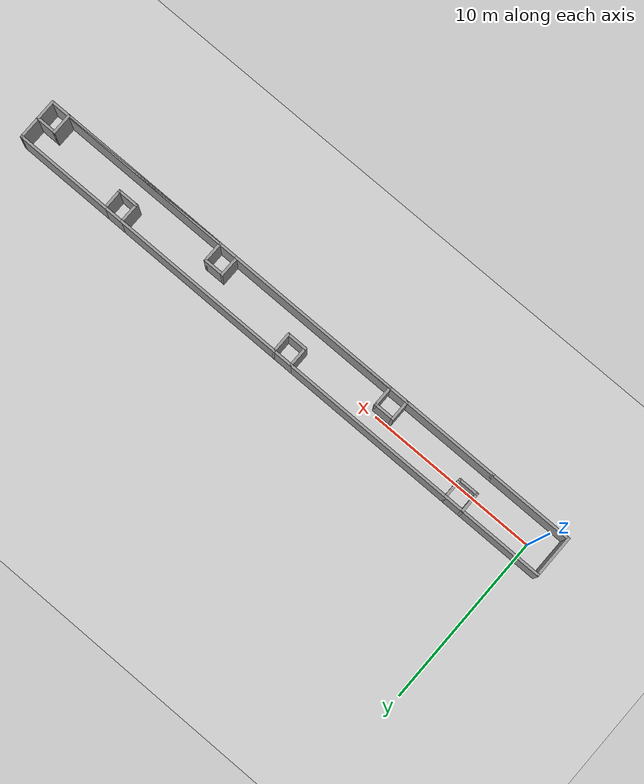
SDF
<sdf version="1.6">
 <world name="default">
  <light name="sun" type="directional">
   <pose>0 0 10 0 -0 0</pose>
   <diffuse>0.8 0.8 0.8 1</diffuse>
   <specular>0.1 0.1 0.1 1</specular>
   <attenuation>
    <range>1000</range>
    <constant>0.9</constant>
    <linear>0.01</linear>
    <quadratic>0.001</quadratic>
   </attenuation>
   <direction>-0.5 0.5 -1</direction>
  </light>
  <model name="ground_plane">
   <static>1</static>
   <link name="link">
    <collision name="collision">
     <geometry><plane><normal>0 0 1</normal><size>100 100</size></plane></geometry>
     <surface><friction><ode><mu>100</mu><mu2>50</mu2></ode></friction></surface>
    </collision>
    <visual name="visual">
     <cast_shadows>0</cast_shadows>
     <geometry><plane><normal>0 0 1</normal><size>100 100</size></plane></geometry>
     <material>
      <script><uri>file://media/materials/scripts/gazebo.material</uri><name>Gazebo/Grey</name></script>
     </material>
    </visual>
   </link>
  </model>
  <gravity>0 0 -9.8</gravity>
  <magnetic_field>6e-06 2.3e-05 -4.2e-05</magnetic_field>
  <atmosphere type="adiabatic"/>
  <physics name="default_physics" default="0" type="ode">
   <max_step_size>0.001</max_step_size>
   <real_time_factor>1</real_time_factor>
   <real_time_update_rate>1000</real_time_update_rate>
  </physics>
  <scene><ambient>0.4 0.4 0.4 1</ambient><background>0.7 0.7 0.7 1</background><shadows>1</shadows></scene>
  <spherical_coordinates>
   <surface_model>EARTH_WGS84</surface_model>
   <latitude_deg>0</latitude_deg>
   <longitude_deg>0</longitude_deg>
   <elevation>0</elevation>
   <heading_deg>0</heading_deg>
  </spherical_coordinates>
  <model name="large_s_world">
   <pose>15.7162 -0.141299 0 0 -0 0</pose>
   <link name="Wall_24">
    <collision name="Wall_24_Collision">
     <geometry><box><size>2.5 0.15 2.5</size></box></geometry>
     <pose>0 0 1.25 0 -0 0</pose>
    </collision>
    <visual name="Wall_24_Visual">
     <pose>0 0 1.25 0 -0 0</pose>
     <geometry><box><size>2.5 0.15 2.5</size></box></geometry>
     <material>
      <script><uri>file://media/materials/scripts/gazebo.material</uri><name>Gazebo/Grey</name></script>
      <ambient>1 1 1 1</ambient>
     </material>
    </visual>
    <pose>-16.975 0 0 0 0 -1.5708</pose>
   </link>
   <link name="Wall_25">
    <collision name="Wall_25_Collision">
     <geometry><box><size>5 0.15 2.5</size></box></geometry>
     <pose>0 0 1.25 0 -0 0</pose>
    </collision>
    <visual name="Wall_25_Visual">
     <pose>0 0 1.25 0 -0 0</pose>
     <geometry><box><size>5 0.15 2.5</size></box></geometry>
     <material>
      <script><uri>file://media/materials/scripts/gazebo.material</uri><name>Gazebo/Grey</name></script>
      <ambient>1 1 1 1</ambient>
     </material>
    </visual>
    <pose>-14.55 -1.175 0 0 -0 0</pose>
   </link>
   <link name="Wall_27">
    <collision name="Wall_27_Collision">
     <geometry><box><size>5 0.15 2.5</size></box></geometry>
     <pose>0 0 1.25 0 -0 0</pose>
    </collision>
    <visual name="Wall_27_Visual">
     <pose>0 0 1.25 0 -0 0</pose>
     <geometry><box><size>5 0.15 2.5</size></box></geometry>
     <material>
      <script><uri>file://media/materials/scripts/gazebo.material</uri><name>Gazebo/Grey</name></script>
      <ambient>1 1 1 1</ambient>
     </material>
    </visual>
    <pose>-14.55 1.175 0 0 -0 3.14159</pose>
   </link>
   <link name="Wall_29">
    <collision name="Wall_29_Collision">
     <geometry><box><size>1.25 0.15 2.5</size></box></geometry>
     <pose>0 0 1.25 0 -0 0</pose>
    </collision>
    <visual name="Wall_29_Visual">
     <pose>0 0 1.25 0 -0 0</pose>
     <geometry><box><size>1.25 0.15 2.5</size></box></geometry>
     <material>
      <script><uri>file://media/materials/scripts/gazebo.material</uri><name>Gazebo/Grey</name></script>
      <ambient>1 1 1 1</ambient>
     </material>
    </visual>
    <pose>-11.575 1.175 0 0 -0 0</pose>
   </link>
   <link name="Wall_30">
    <collision name="Wall_30_Collision">
     <geometry><box><size>1.25 0.15 2.5</size></box></geometry>
     <pose>0 0 1.25 0 -0 0</pose>
    </collision>
    <visual name="Wall_30_Visual">
     <pose>0 0 1.25 0 -0 0</pose>
     <geometry><box><size>1.25 0.15 2.5</size></box></geometry>
     <material>
      <script><uri>file://media/materials/scripts/gazebo.material</uri><name>Gazebo/Grey</name></script>
      <ambient>1 1 1 1</ambient>
     </material>
    </visual>
    <pose>-11.025 0.625 0 0 0 -1.5708</pose>
   </link>
   <link name="Wall_31">
    <collision name="Wall_31_Collision">
     <geometry><box><size>1.25 0.15 2.5</size></box></geometry>
     <pose>0 0 1.25 0 -0 0</pose>
    </collision>
    <visual name="Wall_31_Visual">
     <pose>0 0 1.25 0 -0 0</pose>
     <geometry><box><size>1.25 0.15 2.5</size></box></geometry>
     <material>
      <script><uri>file://media/materials/scripts/gazebo.material</uri><name>Gazebo/Grey</name></script>
      <ambient>1 1 1 1</ambient>
     </material>
    </visual>
    <pose>-11.575 0.075 0 0 -0 3.14159</pose>
   </link>
   <link name="Wall_32">
    <collision name="Wall_32_Collision">
     <geometry><box><size>1.25 0.15 2.5</size></box></geometry>
     <pose>0 0 1.25 0 -0 0</pose>
    </collision>
    <visual name="Wall_32_Visual">
     <pose>0 0 1.25 0 -0 0</pose>
     <geometry><box><size>1.25 0.15 2.5</size></box></geometry>
     <material>
      <script><uri>file://media/materials/scripts/gazebo.material</uri><name>Gazebo/Grey</name></script>
      <ambient>1 1 1 1</ambient>
     </material>
    </visual>
    <pose>-12.125 0.625 0 0 -0 1.5708</pose>
   </link>
   <link name="Wall_34">
    <collision name="Wall_34_Collision">
     <geometry><box><size>10.25 0.15 2.5</size></box></geometry>
     <pose>0 0 1.25 0 -0 0</pose>
    </collision>
    <visual name="Wall_34_Visual">
     <pose>0 0 1.25 0 -0 0</pose>
     <geometry><box><size>10.25 0.15 2.5</size></box></geometry>
     <material>
      <script><uri>file://media/materials/scripts/gazebo.material</uri><name>Gazebo/Grey</name></script>
      <ambient>1 1 1 1</ambient>
     </material>
    </visual>
    <pose>-5.975 1.175 0 0 -0 0</pose>
   </link>
   <link name="Wall_37">
    <collision name="Wall_37_Collision">
     <geometry><box><size>1.25 0.15 2.5</size></box></geometry>
     <pose>0 0 1.25 0 -0 0</pose>
    </collision>
    <visual name="Wall_37_Visual">
     <pose>0 0 1.25 0 -0 0</pose>
     <geometry><box><size>1.25 0.15 2.5</size></box></geometry>
     <material>
      <script><uri>file://media/materials/scripts/gazebo.material</uri><name>Gazebo/Grey</name></script>
      <ambient>1 1 1 1</ambient>
     </material>
    </visual>
    <pose>-0.925 0.625 0 0 0 -1.5708</pose>
   </link>
   <link name="Wall_38">
    <collision name="Wall_38_Collision">
     <geometry><box><size>1.25 0.15 2.5</size></box></geometry>
     <pose>0 0 1.25 0 -0 0</pose>
    </collision>
    <visual name="Wall_38_Visual">
     <pose>0 0 1.25 0 -0 0</pose>
     <geometry><box><size>1.25 0.15 2.5</size></box></geometry>
     <material>
      <script><uri>file://media/materials/scripts/gazebo.material</uri><name>Gazebo/Grey</name></script>
      <ambient>1 1 1 1</ambient>
     </material>
    </visual>
    <pose>-0.375 0.075 0 0 -0 0</pose>
   </link>
   <link name="Wall_39">
    <collision name="Wall_39_Collision">
     <geometry><box><size>1.25 0.15 2.5</size></box></geometry>
     <pose>0 0 1.25 0 -0 0</pose>
    </collision>
    <visual name="Wall_39_Visual">
     <pose>0 0 1.25 0 -0 0</pose>
     <geometry><box><size>1.25 0.15 2.5</size></box></geometry>
     <material>
      <script><uri>file://media/materials/scripts/gazebo.material</uri><name>Gazebo/Grey</name></script>
      <ambient>1 1 1 1</ambient>
     </material>
    </visual>
    <pose>0.175 0.625 0 0 -0 1.5708</pose>
   </link>
   <link name="Wall_40">
    <collision name="Wall_40_Collision">
     <geometry><box><size>1.25 0.15 2.5</size></box></geometry>
     <pose>0 0 1.25 0 -0 0</pose>
    </collision>
    <visual name="Wall_40_Visual">
     <pose>0 0 1.25 0 -0 0</pose>
     <geometry><box><size>1.25 0.15 2.5</size></box></geometry>
     <material>
      <script><uri>file://media/materials/scripts/gazebo.material</uri><name>Gazebo/Grey</name></script>
      <ambient>1 1 1 1</ambient>
     </material>
    </visual>
    <pose>-0.375 1.175 0 0 -0 3.14159</pose>
   </link>
   <link name="Wall_42">
    <collision name="Wall_42_Collision">
     <geometry><box><size>10.25 0.15 2.5</size></box></geometry>
     <pose>0 0 1.25 0 -0 0</pose>
    </collision>
    <visual name="Wall_42_Visual">
     <pose>0 0 1.25 0 -0 0</pose>
     <geometry><box><size>10.25 0.15 2.5</size></box></geometry>
     <material>
      <script><uri>file://media/materials/scripts/gazebo.material</uri><name>Gazebo/Grey</name></script>
      <ambient>1 1 1 1</ambient>
     </material>
    </visual>
    <pose>5.225 1.175 0 0 -0 0</pose>
   </link>
   <link name="Wall_43">
    <collision name="Wall_43_Collision">
     <geometry><box><size>1.25 0.15 2.5</size></box></geometry>
     <pose>0 0 1.25 0 -0 0</pose>
    </collision>
    <visual name="Wall_43_Visual">
     <pose>0 0 1.25 0 -0 0</pose>
     <geometry><box><size>1.25 0.15 2.5</size></box></geometry>
     <material>
      <script><uri>file://media/materials/scripts/gazebo.material</uri><name>Gazebo/Grey</name></script>
      <ambient>1 1 1 1</ambient>
     </material>
    </visual>
    <pose>10.275 0.625 0 0 0 -1.5708</pose>
   </link>
   <link name="Wall_44">
    <collision name="Wall_44_Collision">
     <geometry><box><size>1.25 0.15 2.5</size></box></geometry>
     <pose>0 0 1.25 0 -0 0</pose>
    </collision>
    <visual name="Wall_44_Visual">
     <pose>0 0 1.25 0 -0 0</pose>
     <geometry><box><size>1.25 0.15 2.5</size></box></geometry>
     <material>
      <script><uri>file://media/materials/scripts/gazebo.material</uri><name>Gazebo/Grey</name></script>
      <ambient>1 1 1 1</ambient>
     </material>
    </visual>
    <pose>10.825 0.075 0 0 -0 0</pose>
   </link>
   <link name="Wall_45">
    <collision name="Wall_45_Collision">
     <geometry><box><size>1.25 0.15 2.5</size></box></geometry>
     <pose>0 0 1.25 0 -0 0</pose>
    </collision>
    <visual name="Wall_45_Visual">
     <pose>0 0 1.25 0 -0 0</pose>
     <geometry><box><size>1.25 0.15 2.5</size></box></geometry>
     <material>
      <script><uri>file://media/materials/scripts/gazebo.material</uri><name>Gazebo/Grey</name></script>
      <ambient>1 1 1 1</ambient>
     </material>
    </visual>
    <pose>11.375 0.625 0 0 -0 1.5708</pose>
   </link>
   <link name="Wall_46">
    <collision name="Wall_46_Collision">
     <geometry><box><size>1.25 0.15 2.5</size></box></geometry>
     <pose>0 0 1.25 0 -0 0</pose>
    </collision>
    <visual name="Wall_46_Visual">
     <pose>0 0 1.25 0 -0 0</pose>
     <geometry><box><size>1.25 0.15 2.5</size></box></geometry>
     <material>
      <script><uri>file://media/materials/scripts/gazebo.material</uri><name>Gazebo/Grey</name></script>
      <ambient>1 1 1 1</ambient>
     </material>
    </visual>
    <pose>10.825 1.175 0 0 -0 3.14159</pose>
   </link>
   <link name="Wall_48">
    <collision name="Wall_48_Collision">
     <geometry><box><size>5.75 0.15 2.5</size></box></geometry>
     <pose>0 0 1.25 0 -0 0</pose>
    </collision>
    <visual name="Wall_48_Visual">
     <pose>0 0 1.25 0 -0 0</pose>
     <geometry><box><size>5.75 0.15 2.5</size></box></geometry>
     <material>
      <script><uri>file://media/materials/scripts/gazebo.material</uri><name>Gazebo/Grey</name></script>
      <ambient>1 1 1 1</ambient>
     </material>
    </visual>
    <pose>-9.325 -1.175 0 0 -0 0</pose>
   </link>
   <link name="Wall_49">
    <collision name="Wall_49_Collision">
     <geometry><box><size>1.25 0.15 2.5</size></box></geometry>
     <pose>0 0 1.25 0 -0 0</pose>
    </collision>
    <visual name="Wall_49_Visual">
     <pose>0 0 1.25 0 -0 0</pose>
     <geometry><box><size>1.25 0.15 2.5</size></box></geometry>
     <material>
      <script><uri>file://media/materials/scripts/gazebo.material</uri><name>Gazebo/Grey</name></script>
      <ambient>1 1 1 1</ambient>
     </material>
    </visual>
    <pose>-6.525 -0.625 0 0 -0 1.5708</pose>
   </link>
   <link name="Wall_50">
    <collision name="Wall_50_Collision">
     <geometry><box><size>1.25 0.15 2.5</size></box></geometry>
     <pose>0 0 1.25 0 -0 0</pose>
    </collision>
    <visual name="Wall_50_Visual">
     <pose>0 0 1.25 0 -0 0</pose>
     <geometry><box><size>1.25 0.15 2.5</size></box></geometry>
     <material>
      <script><uri>file://media/materials/scripts/gazebo.material</uri><name>Gazebo/Grey</name></script>
      <ambient>1 1 1 1</ambient>
     </material>
    </visual>
    <pose>-5.975 -0.075 0 0 -0 0</pose>
   </link>
   <link name="Wall_51">
    <collision name="Wall_51_Collision">
     <geometry><box><size>1.25 0.15 2.5</size></box></geometry>
     <pose>0 0 1.25 0 -0 0</pose>
    </collision>
    <visual name="Wall_51_Visual">
     <pose>0 0 1.25 0 -0 0</pose>
     <geometry><box><size>1.25 0.15 2.5</size></box></geometry>
     <material>
      <script><uri>file://media/materials/scripts/gazebo.material</uri><name>Gazebo/Grey</name></script>
      <ambient>1 1 1 1</ambient>
     </material>
    </visual>
    <pose>-5.425 -0.625 0 0 0 -1.5708</pose>
   </link>
   <link name="Wall_52">
    <collision name="Wall_52_Collision">
     <geometry><box><size>10.25 0.15 2.5</size></box></geometry>
     <pose>0 0 1.25 0 -0 0</pose>
    </collision>
    <visual name="Wall_52_Visual">
     <pose>0 0 1.25 0 -0 0</pose>
     <geometry><box><size>10.25 0.15 2.5</size></box></geometry>
     <material>
      <script><uri>file://media/materials/scripts/gazebo.material</uri><name>Gazebo/Grey</name></script>
      <ambient>1 1 1 1</ambient>
     </material>
    </visual>
    <pose>-0.375 -1.175 0 0 -0 0</pose>
   </link>
   <link name="Wall_53">
    <collision name="Wall_53_Collision">
     <geometry><box><size>1.25 0.15 2.5</size></box></geometry>
     <pose>0 0 1.25 0 -0 0</pose>
    </collision>
    <visual name="Wall_53_Visual">
     <pose>0 0 1.25 0 -0 0</pose>
     <geometry><box><size>1.25 0.15 2.5</size></box></geometry>
     <material>
      <script><uri>file://media/materials/scripts/gazebo.material</uri><name>Gazebo/Grey</name></script>
      <ambient>1 1 1 1</ambient>
     </material>
    </visual>
    <pose>4.675 -0.625 0 0 -0 1.5708</pose>
   </link>
   <link name="Wall_57">
    <collision name="Wall_57_Collision">
     <geometry><box><size>1.25 0.15 2.5</size></box></geometry>
     <pose>0 0 1.25 0 -0 0</pose>
    </collision>
    <visual name="Wall_57_Visual">
     <pose>0 0 1.25 0 -0 0</pose>
     <geometry><box><size>1.25 0.15 2.5</size></box></geometry>
     <material>
      <script><uri>file://media/materials/scripts/gazebo.material</uri><name>Gazebo/Grey</name></script>
      <ambient>1 1 1 1</ambient>
     </material>
    </visual>
    <pose>5.225 -0.075 0 0 -0 0</pose>
   </link>
   <link name="Wall_58">
    <collision name="Wall_58_Collision">
     <geometry><box><size>1.25 0.15 2.5</size></box></geometry>
     <pose>0 0 1.25 0 -0 0</pose>
    </collision>
    <visual name="Wall_58_Visual">
     <pose>0 0 1.25 0 -0 0</pose>
     <geometry><box><size>1.25 0.15 2.5</size></box></geometry>
     <material>
      <script><uri>file://media/materials/scripts/gazebo.material</uri><name>Gazebo/Grey</name></script>
      <ambient>1 1 1 1</ambient>
     </material>
    </visual>
    <pose>5.775 -0.625 0 0 0 -1.5708</pose>
   </link>
   <link name="Wall_59">
    <collision name="Wall_59_Collision">
     <geometry><box><size>10.25 0.15 2.5</size></box></geometry>
     <pose>0 0 1.25 0 -0 0</pose>
    </collision>
    <visual name="Wall_59_Visual">
     <pose>0 0 1.25 0 -0 0</pose>
     <geometry><box><size>10.25 0.15 2.5</size></box></geometry>
     <material>
      <script><uri>file://media/materials/scripts/gazebo.material</uri><name>Gazebo/Grey</name></script>
      <ambient>1 1 1 1</ambient>
     </material>
    </visual>
    <pose>10.825 -1.175 0 0 -0 0</pose>
   </link>
   <link name="Wall_60">
    <collision name="Wall_60_Collision">
     <geometry><box><size>1.25 0.15 2.5</size></box></geometry>
     <pose>0 0 1.25 0 -0 0</pose>
    </collision>
    <visual name="Wall_60_Visual">
     <pose>0 0 1.25 0 -0 0</pose>
     <geometry><box><size>1.25 0.15 2.5</size></box></geometry>
     <material>
      <script><uri>file://media/materials/scripts/gazebo.material</uri><name>Gazebo/Grey</name></script>
      <ambient>1 1 1 1</ambient>
     </material>
    </visual>
    <pose>15.875 -0.625 0 0 -0 1.5708</pose>
   </link>
   <link name="Wall_61">
    <collision name="Wall_61_Collision">
     <geometry><box><size>1.25 0.15 2.5</size></box></geometry>
     <pose>0 0 1.25 0 -0 0</pose>
    </collision>
    <visual name="Wall_61_Visual">
     <pose>0 0 1.25 0 -0 0</pose>
     <geometry><box><size>1.25 0.15 2.5</size></box></geometry>
     <material>
      <script><uri>file://media/materials/scripts/gazebo.material</uri><name>Gazebo/Grey</name></script>
      <ambient>1 1 1 1</ambient>
     </material>
    </visual>
    <pose>16.425 -0.075 0 0 -0 0</pose>
   </link>
   <link name="Wall_62">
    <collision name="Wall_62_Collision">
     <geometry><box><size>1.25 0.15 2.5</size></box></geometry>
     <pose>0 0 1.25 0 -0 0</pose>
    </collision>
    <visual name="Wall_62_Visual">
     <pose>0 0 1.25 0 -0 0</pose>
     <geometry><box><size>1.25 0.15 2.5</size></box></geometry>
     <material>
      <script><uri>file://media/materials/scripts/gazebo.material</uri><name>Gazebo/Grey</name></script>
      <ambient>1 1 1 1</ambient>
     </material>
    </visual>
    <pose>16.975 -0.625 0 0 0 -1.5708</pose>
   </link>
   <link name="Wall_63">
    <collision name="Wall_63_Collision">
     <geometry><box><size>23.65 0.15 2.5</size></box></geometry>
     <pose>0 0 1.25 0 -0 0</pose>
    </collision>
    <visual name="Wall_63_Visual">
     <pose>0 0 1.25 0 -0 0</pose>
     <geometry><box><size>23.65 0.15 2.5</size></box></geometry>
     <material>
      <script><uri>file://media/materials/scripts/gazebo.material</uri><name>Gazebo/Grey</name></script>
      <ambient>1 1 1 1</ambient>
     </material>
    </visual>
    <pose>5.225 -1.175 0 0 -0 3.14159</pose>
   </link>
   <link name="Wall_65">
    <collision name="Wall_65_Collision">
     <geometry><box><size>5.75 0.15 2.5</size></box></geometry>
     <pose>0 0 1.25 0 -0 0</pose>
    </collision>
    <visual name="Wall_65_Visual">
     <pose>0 0 1.25 0 -0 0</pose>
     <geometry><box><size>5.75 0.15 2.5</size></box></geometry>
     <material>
      <script><uri>file://media/materials/scripts/gazebo.material</uri><name>Gazebo/Grey</name></script>
      <ambient>1 1 1 1</ambient>
     </material>
    </visual>
    <pose>14.175 1.175 0 0 -0 0</pose>
   </link>
   <link name="Wall_66">
    <collision name="Wall_66_Collision">
     <geometry><box><size>1.4 0.15 2.5</size></box></geometry>
     <pose>0 0 1.25 0 -0 0</pose>
    </collision>
    <visual name="Wall_66_Visual">
     <pose>0 0 1.25 0 -0 0</pose>
     <geometry><box><size>1.4 0.15 2.5</size></box></geometry>
     <material>
      <script><uri>file://media/materials/scripts/gazebo.material</uri><name>Gazebo/Grey</name></script>
      <ambient>1 1 1 1</ambient>
     </material>
    </visual>
    <pose>16.975 0.55 0 0 0 -1.5708</pose>
   </link>
   <static>1</static>
  </model>
 </world>
</sdf>
